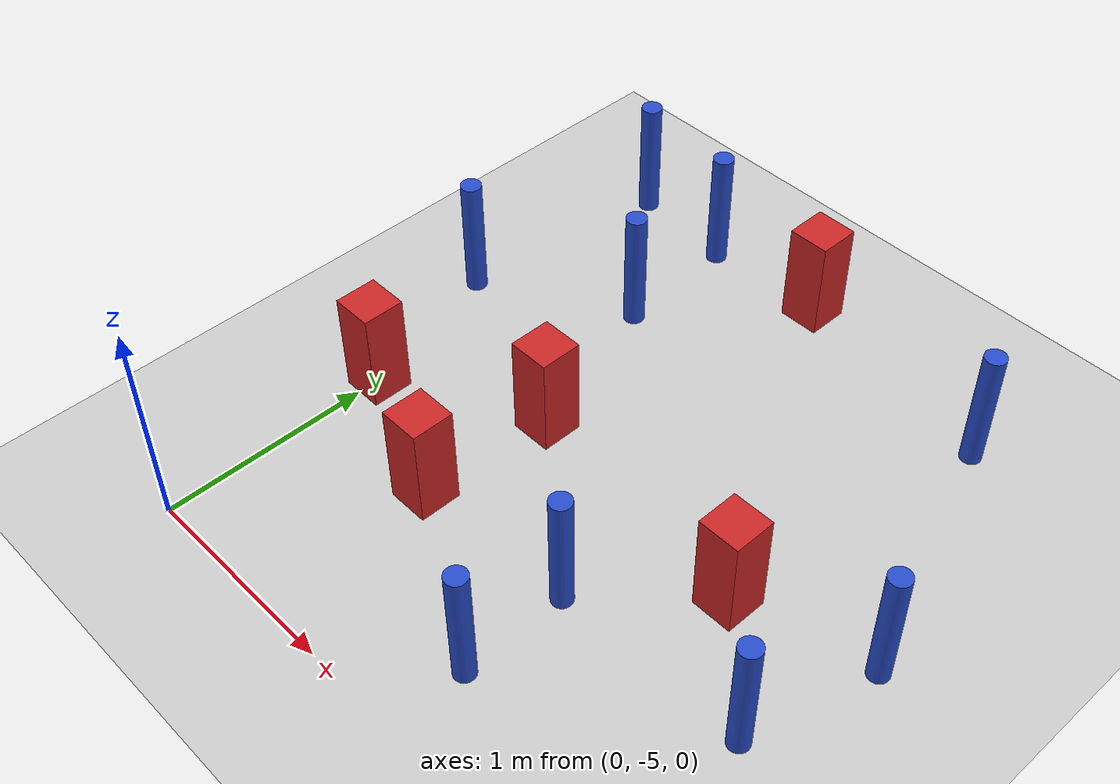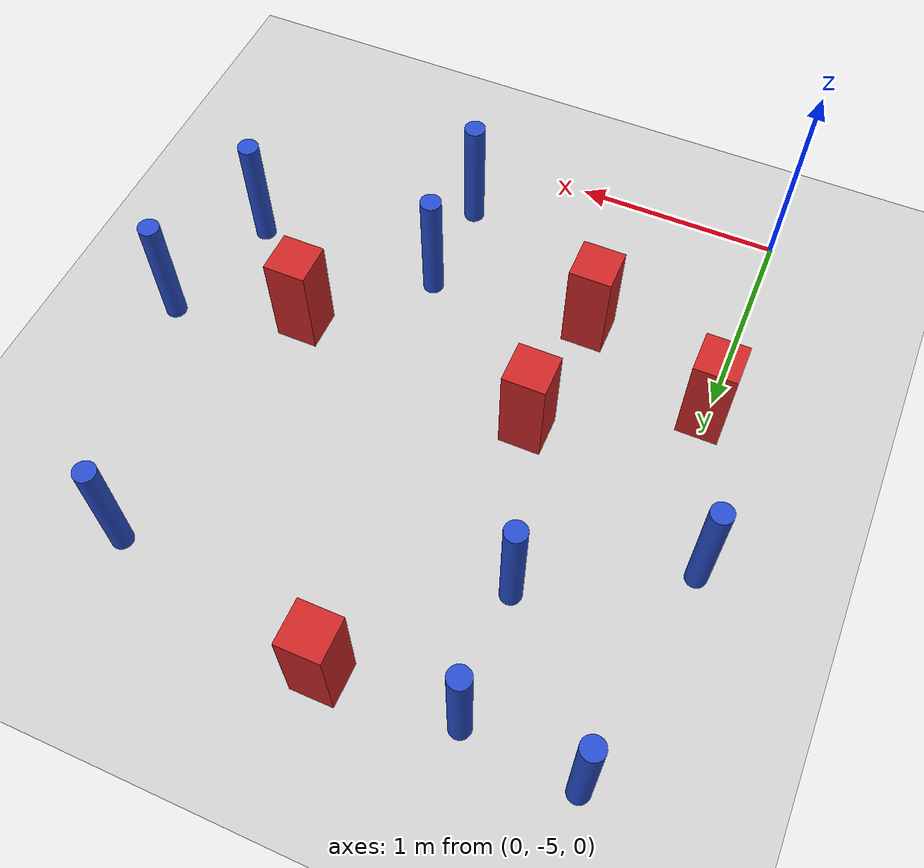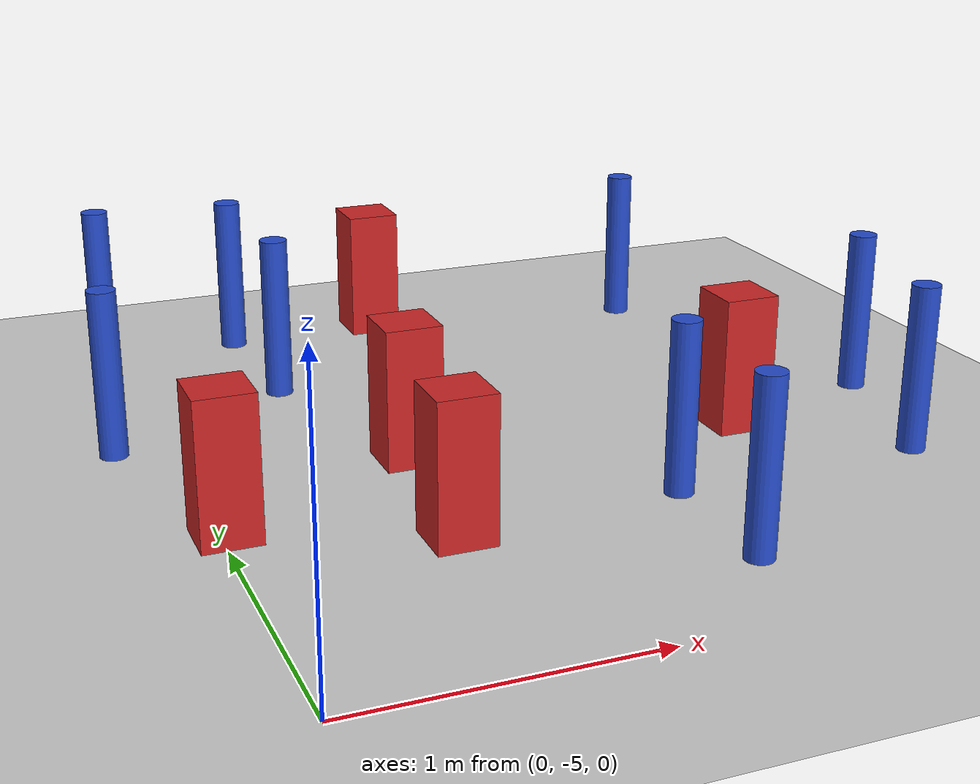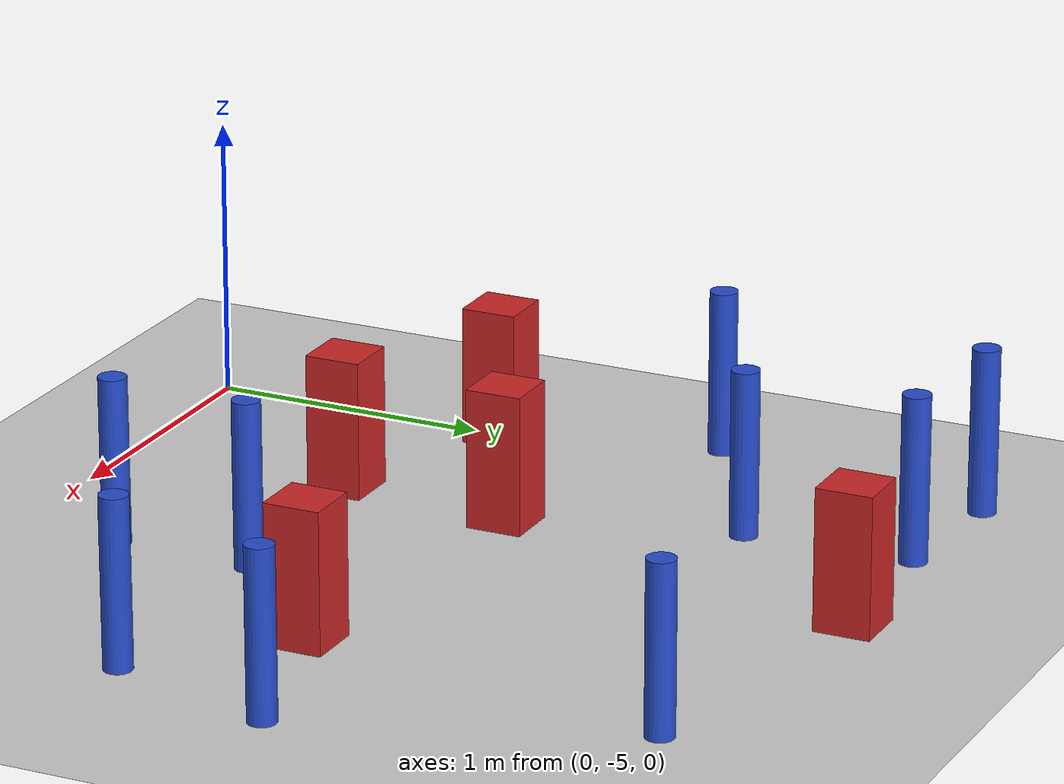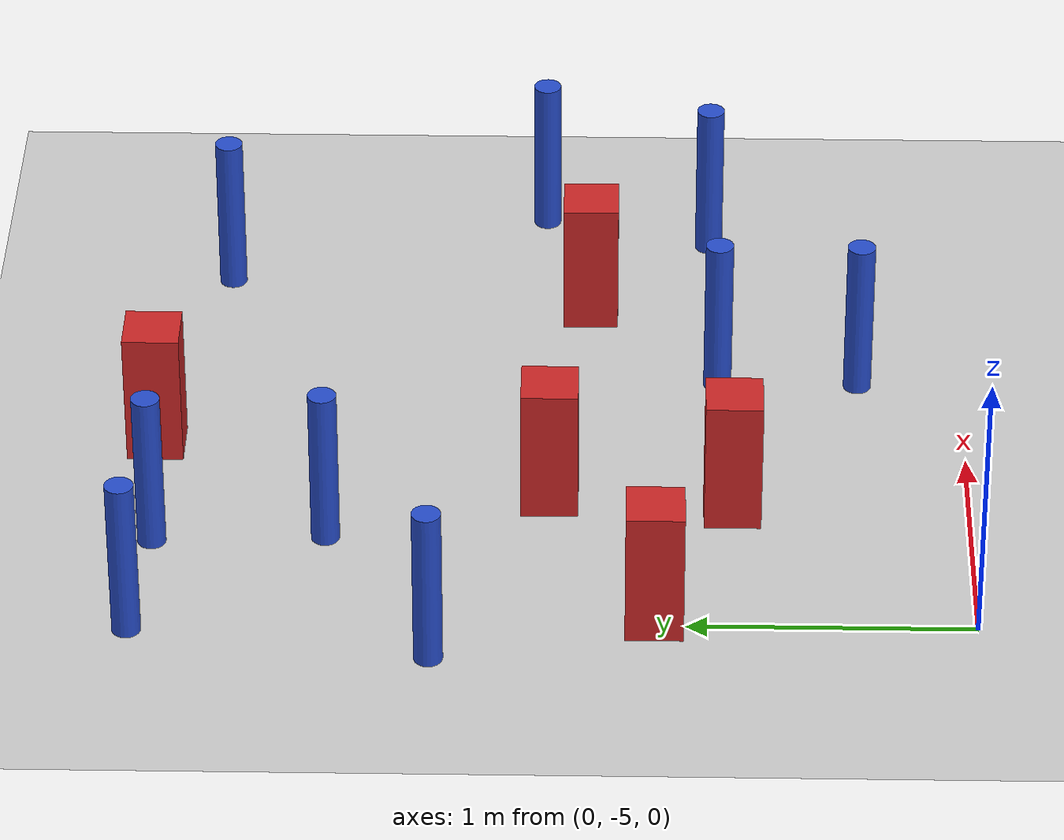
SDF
<sdf version="1.6">
 <world name="default">
  <model name="ground_plane">
   <static>1</static>
   <link name="link">
    <collision name="collision">
     <geometry><plane><normal>0 0 1</normal><size>100 100</size></plane></geometry>
     <surface><friction><ode><mu>100</mu><mu2>50</mu2></ode></friction></surface>
    </collision>
    <visual name="visual">
     <cast_shadows>0</cast_shadows>
     <geometry><plane><normal>0 0 1</normal><size>100 100</size></plane></geometry>
     <material>
      <ambient>1.0 1.0 1.0 1.0</ambient>
      <diffuse>0.8 0.8 0.8 1.0</diffuse>
      <specular>0.01 0.01 0.01 1.000000</specular>
     </material>
    </visual>
   </link>
  </model>
  <model name="square_post_obstacle2">
   <static>true</static>
   <pose>0.737378162376 -3.52441754749 -4.36207812815e-07 3.75137919937e-06 9.77721102514e-07 2.47381364184e-05</pose>
   <link name="link">
    <pose>0 0 0.25 0 -0 0</pose>
    <inertial>
     <mass>100</mass>
     <inertia>
      <ixx>0.166667</ixx>
      <ixy>0</ixy>
      <ixz>0</ixz>
      <iyy>0.166667</iyy>
      <iyz>0</iyz>
      <izz>0.166667</izz>
     </inertia>
    </inertial>
    <collision name="collision"><geometry><box><size>.2 .2 .5</size></box></geometry></collision>
    <visual name="visual">
     <geometry><box><size>.2 .2 .5</size></box></geometry>
     <material>
      <script><name>Gazebo/Red</name><uri>file://media/materials/scripts/gazebo.material</uri></script>
     </material>
    </visual>
   </link>
  </model>
  <model name="pole_obstacle21">
   <static>true</static>
   <pose>2.39913195928 -4.09316448349 -3.09024884793e-07 -7.19054271912e-07 -2.11315075134e-07 -1.93935509266e-07</pose>
   <link name="link">
    <pose>0 0 0.3 0 -0 0</pose>
    <inertial>
     <mass>1</mass>
     <inertia><ixx>0.145833</ixx><ixy>0</ixy><ixz>0</ixz><iyy>0.145833</iyy><iyz>0</iyz><izz>0.125</izz></inertia>
    </inertial>
    <collision name="collision">
     <geometry><cylinder><radius>0.05</radius><length>.6</length></cylinder></geometry>
    </collision>
    <visual name="visual">
     <geometry><cylinder><radius>0.05</radius><length>.6</length></cylinder></geometry>
     <material>
      <script><name>Gazebo/Blue</name><uri>file://media/materials/scripts/gazebo.material</uri></script>
     </material>
    </visual>
   </link>
  </model>
  <model name="pole_obstacle25">
   <static>true</static>
   <pose>1.47300155585 -4.11947141754 -3.09024884793e-07 -7.19054271912e-07 -2.11315075134e-07 -1.93935509265e-07</pose>
   <link name="link">
    <pose>0 0 0.3 0 -0 0</pose>
    <inertial>
     <mass>1</mass>
     <inertia><ixx>0.145833</ixx><ixy>0</ixy><ixz>0</ixz><iyy>0.145833</iyy><iyz>0</iyz><izz>0.125</izz></inertia>
    </inertial>
    <collision name="collision">
     <geometry><cylinder><radius>0.05</radius><length>.6</length></cylinder></geometry>
    </collision>
    <visual name="visual">
     <geometry><cylinder><radius>0.05</radius><length>.6</length></cylinder></geometry>
     <material>
      <script><name>Gazebo/Blue</name><uri>file://media/materials/scripts/gazebo.material</uri></script>
     </material>
    </visual>
   </link>
  </model>
  <model name="pole_obstacle44">
   <static>true</static>
   <pose>0.465777182449 -2.14256649682 -3.09024884793e-07 -7.19054271912e-07 -2.11315075129e-07 -1.93935509262e-07</pose>
   <link name="link">
    <pose>0 0 0.3 0 -0 0</pose>
    <inertial>
     <mass>1</mass>
     <inertia><ixx>0.145833</ixx><ixy>0</ixy><ixz>0</ixz><iyy>0.145833</iyy><iyz>0</iyz><izz>0.125</izz></inertia>
    </inertial>
    <collision name="collision">
     <geometry><cylinder><radius>0.05</radius><length>.6</length></cylinder></geometry>
    </collision>
    <visual name="visual">
     <geometry><cylinder><radius>0.05</radius><length>.6</length></cylinder></geometry>
     <material>
      <script><name>Gazebo/Blue</name><uri>file://media/materials/scripts/gazebo.material</uri></script>
     </material>
    </visual>
   </link>
  </model>
  <model name="pole_obstacle63">
   <static>true</static>
   <pose>2.56396072423 -3.48334375443 -3.09024884793e-07 -7.19054271912e-07 -2.11315075144e-07 -1.93935509271e-07</pose>
   <link name="link">
    <pose>0 0 0.3 0 -0 0</pose>
    <inertial>
     <mass>1</mass>
     <inertia><ixx>0.145833</ixx><ixy>0</ixy><ixz>0</ixz><iyy>0.145833</iyy><iyz>0</iyz><izz>0.125</izz></inertia>
    </inertial>
    <collision name="collision">
     <geometry><cylinder><radius>0.05</radius><length>.6</length></cylinder></geometry>
    </collision>
    <visual name="visual">
     <geometry><cylinder><radius>0.05</radius><length>.6</length></cylinder></geometry>
     <material>
      <script><name>Gazebo/Blue</name><uri>file://media/materials/scripts/gazebo.material</uri></script>
     </material>
    </visual>
   </link>
  </model>
  <model name="pole_obstacle74">
   <static>true</static>
   <pose>0.497128094504 -2.74662567701 -3.09024884793e-07 -7.19054271912e-07 -2.11315075129e-07 -1.93935509262e-07</pose>
   <link name="link">
    <pose>0 0 0.3 0 -0 0</pose>
    <inertial>
     <mass>1</mass>
     <inertia><ixx>0.145833</ixx><ixy>0</ixy><ixz>0</ixz><iyy>0.145833</iyy><iyz>0</iyz><izz>0.125</izz></inertia>
    </inertial>
    <collision name="collision">
     <geometry><cylinder><radius>0.05</radius><length>.6</length></cylinder></geometry>
    </collision>
    <visual name="visual">
     <geometry><cylinder><radius>0.05</radius><length>.6</length></cylinder></geometry>
     <material>
      <script><name>Gazebo/Blue</name><uri>file://media/materials/scripts/gazebo.material</uri></script>
     </material>
    </visual>
   </link>
  </model>
  <model name="square_post_obstacle76">
   <static>true</static>
   <pose>1.05893671175 -2.11490466039 -4.36207812815e-07 3.75137919937e-06 9.77721102514e-07 2.47381364184e-05</pose>
   <link name="link">
    <pose>0 0 0.25 0 -0 0</pose>
    <inertial>
     <mass>100</mass>
     <inertia>
      <ixx>0.166667</ixx>
      <ixy>0</ixy>
      <ixz>0</ixz>
      <iyy>0.166667</iyy>
      <iyz>0</iyz>
      <izz>0.166667</izz>
     </inertia>
    </inertial>
    <collision name="collision"><geometry><box><size>.2 .2 .5</size></box></geometry></collision>
    <visual name="visual">
     <geometry><box><size>.2 .2 .5</size></box></geometry>
     <material>
      <script><name>Gazebo/Red</name><uri>file://media/materials/scripts/gazebo.material</uri></script>
     </material>
    </visual>
   </link>
  </model>
  <model name="square_post_obstacle80">
   <static>true</static>
   <pose>0.0171194814207 -3.89382806712 -4.36207812815e-07 3.75137919937e-06 9.77721102514e-07 2.47381364184e-05</pose>
   <link name="link">
    <pose>0 0 0.25 0 -0 0</pose>
    <inertial>
     <mass>100</mass>
     <inertia>
      <ixx>0.166667</ixx>
      <ixy>0</ixy>
      <ixz>0</ixz>
      <iyy>0.166667</iyy>
      <iyz>0</iyz>
      <izz>0.166667</izz>
     </inertia>
    </inertial>
    <collision name="collision"><geometry><box><size>.2 .2 .5</size></box></geometry></collision>
    <visual name="visual">
     <geometry><box><size>.2 .2 .5</size></box></geometry>
     <material>
      <script><name>Gazebo/Red</name><uri>file://media/materials/scripts/gazebo.material</uri></script>
     </material>
    </visual>
   </link>
  </model>
  <model name="pole_obstacle111">
   <static>true</static>
   <pose>-0.193867172093 -3.13026214023 -3.09024884793e-07 -7.19054271912e-07 -2.11315075126e-07 -1.9393550926e-07</pose>
   <link name="link">
    <pose>0 0 0.3 0 -0 0</pose>
    <inertial>
     <mass>1</mass>
     <inertia><ixx>0.145833</ixx><ixy>0</ixy><ixz>0</ixz><iyy>0.145833</iyy><iyz>0</iyz><izz>0.125</izz></inertia>
    </inertial>
    <collision name="collision">
     <geometry><cylinder><radius>0.05</radius><length>.6</length></cylinder></geometry>
    </collision>
    <visual name="visual">
     <geometry><cylinder><radius>0.05</radius><length>.6</length></cylinder></geometry>
     <material>
      <script><name>Gazebo/Blue</name><uri>file://media/materials/scripts/gazebo.material</uri></script>
     </material>
    </visual>
   </link>
  </model>
  <model name="pole_obstacle129">
   <static>true</static>
   <pose>-0.0503481458531 -2.09634081897 -3.09024884848e-07 -7.19054271903e-07 -2.11315075205e-07 -1.93935509288e-07</pose>
   <link name="link">
    <pose>0 0 0.3 0 -0 0</pose>
    <inertial>
     <mass>1</mass>
     <inertia><ixx>0.145833</ixx><ixy>0</ixy><ixz>0</ixz><iyy>0.145833</iyy><iyz>0</iyz><izz>0.125</izz></inertia>
    </inertial>
    <collision name="collision">
     <geometry><cylinder><radius>0.05</radius><length>.6</length></cylinder></geometry>
    </collision>
    <visual name="visual">
     <geometry><cylinder><radius>0.05</radius><length>.6</length></cylinder></geometry>
     <material>
      <script><name>Gazebo/Blue</name><uri>file://media/materials/scripts/gazebo.material</uri></script>
     </material>
    </visual>
   </link>
  </model>
  <model name="square_post_obstacle136">
   <static>true</static>
   <pose>0.677404059245 -4.16605865278 -4.36207812815e-07 3.75137919937e-06 9.77721102514e-07 2.47381364184e-05</pose>
   <link name="link">
    <pose>0 0 0.25 0 -0 0</pose>
    <inertial>
     <mass>100</mass>
     <inertia>
      <ixx>0.166667</ixx>
      <ixy>0</ixy>
      <ixz>0</ixz>
      <iyy>0.166667</iyy>
      <iyz>0</iyz>
      <izz>0.166667</izz>
     </inertia>
    </inertial>
    <collision name="collision"><geometry><box><size>.2 .2 .5</size></box></geometry></collision>
    <visual name="visual">
     <geometry><box><size>.2 .2 .5</size></box></geometry>
     <material>
      <script><name>Gazebo/Red</name><uri>file://media/materials/scripts/gazebo.material</uri></script>
     </material>
    </visual>
   </link>
  </model>
  <model name="pole_obstacle166">
   <static>true</static>
   <pose>1.47141648166 -4.6264317666 -3.09024884793e-07 -7.19054271912e-07 -2.11315075134e-07 -1.93935509265e-07</pose>
   <link name="link">
    <pose>0 0 0.3 0 -0 0</pose>
    <inertial>
     <mass>1</mass>
     <inertia><ixx>0.145833</ixx><ixy>0</ixy><ixz>0</ixz><iyy>0.145833</iyy><iyz>0</iyz><izz>0.125</izz></inertia>
    </inertial>
    <collision name="collision">
     <geometry><cylinder><radius>0.05</radius><length>.6</length></cylinder></geometry>
    </collision>
    <visual name="visual">
     <geometry><cylinder><radius>0.05</radius><length>.6</length></cylinder></geometry>
     <material>
      <script><name>Gazebo/Blue</name><uri>file://media/materials/scripts/gazebo.material</uri></script>
     </material>
    </visual>
   </link>
  </model>
  <model name="square_post_obstacle169">
   <static>true</static>
   <pose>1.93946094099 -3.65450532482 -4.36207812815e-07 3.75137919937e-06 9.77721102514e-07 2.47381364184e-05</pose>
   <link name="link">
    <pose>0 0 0.25 0 -0 0</pose>
    <inertial>
     <mass>100</mass>
     <inertia>
      <ixx>0.166667</ixx>
      <ixy>0</ixy>
      <ixz>0</ixz>
      <iyy>0.166667</iyy>
      <iyz>0</iyz>
      <izz>0.166667</izz>
     </inertia>
    </inertial>
    <collision name="collision"><geometry><box><size>.2 .2 .5</size></box></geometry></collision>
    <visual name="visual">
     <geometry><box><size>.2 .2 .5</size></box></geometry>
     <material>
      <script><name>Gazebo/Red</name><uri>file://media/materials/scripts/gazebo.material</uri></script>
     </material>
    </visual>
   </link>
  </model>
  <model name="pole_obstacle188">
   <static>true</static>
   <pose>2.1319371797 -2.31666791118 -3.09024884793e-07 -7.19054271912e-07 -2.11315075144e-07 -1.93935509271e-07</pose>
   <link name="link">
    <pose>0 0 0.3 0 -0 0</pose>
    <inertial>
     <mass>1</mass>
     <inertia><ixx>0.145833</ixx><ixy>0</ixy><ixz>0</ixz><iyy>0.145833</iyy><iyz>0</iyz><izz>0.125</izz></inertia>
    </inertial>
    <collision name="collision">
     <geometry><cylinder><radius>0.05</radius><length>.6</length></cylinder></geometry>
    </collision>
    <visual name="visual">
     <geometry><cylinder><radius>0.05</radius><length>.6</length></cylinder></geometry>
     <material>
      <script><name>Gazebo/Blue</name><uri>file://media/materials/scripts/gazebo.material</uri></script>
     </material>
    </visual>
   </link>
  </model>
 </world>
</sdf>
